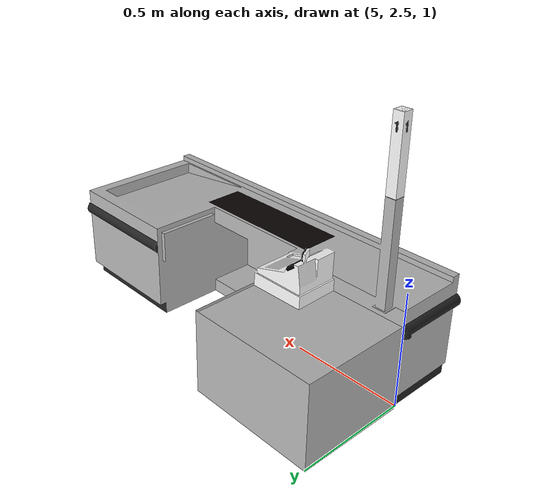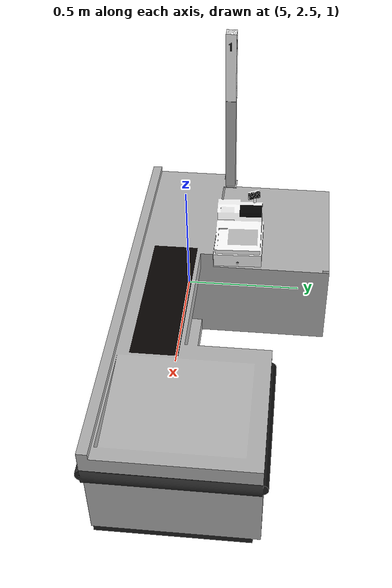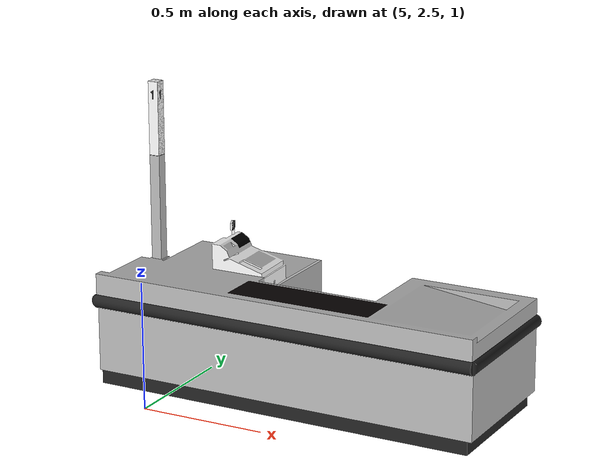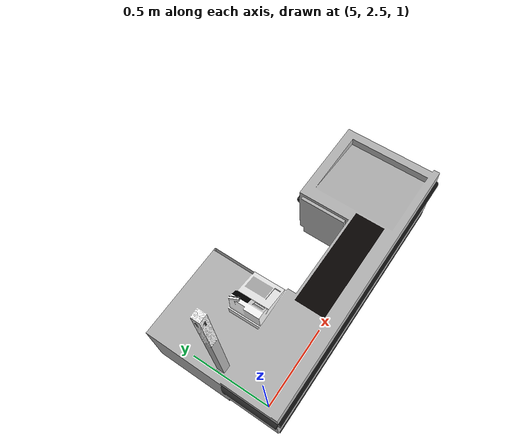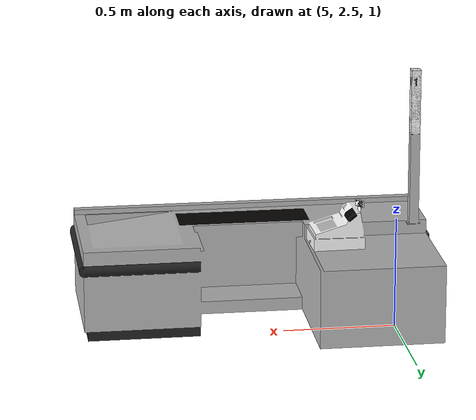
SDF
<?xml version="1.0" ?>
<sdf version="1.5">
  <model name="store">
    <static>true</static>
    <link name="checkout3">
      <collision name="collision">
        <geometry>
          <mesh>
            <uri>model://grocery_store/checkout3/checkout3.dae</uri>
          </mesh>
        </geometry>
	<max_contacts>10</max_contacts>
        <surface>
          <contact>
            <ode/>
          </contact>
          <bounce/>
          <friction>
            <torsional>
              <ode/>
            </torsional>
            <ode/>
          </friction>
        </surface>
      </collision>
      <visual name="visual">
        <geometry>
          <mesh>
            <uri>model://grocery_store/checkout3/checkout3.dae</uri>
          </mesh>
        </geometry>
        <cast_shadows>false</cast_shadows>
      </visual>
      <self_collide>0</self_collide>
      <enable_wind>0</enable_wind>
      <kinematic>0</kinematic>
    </link>
  </model>
</sdf>
